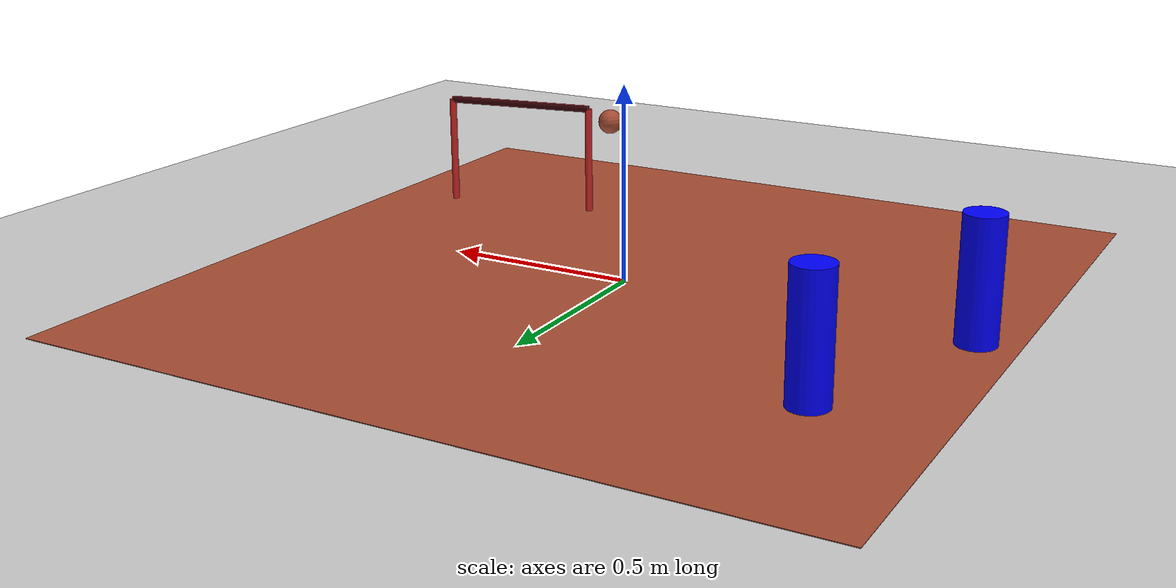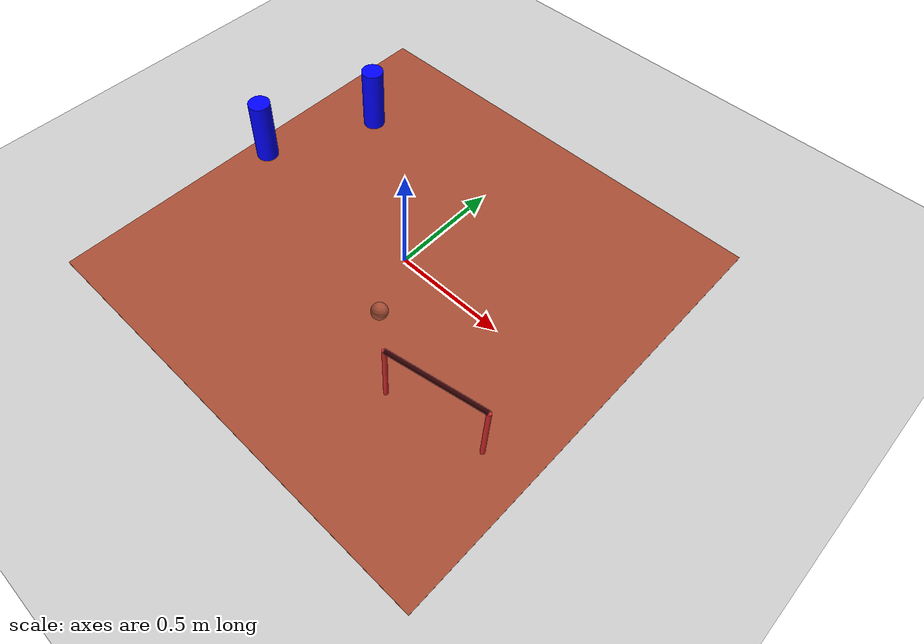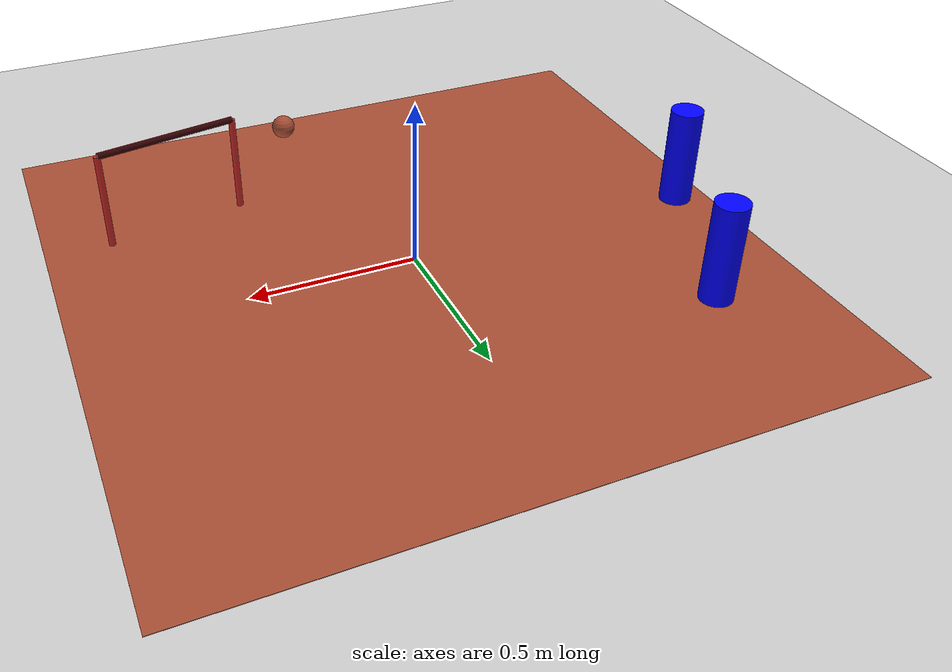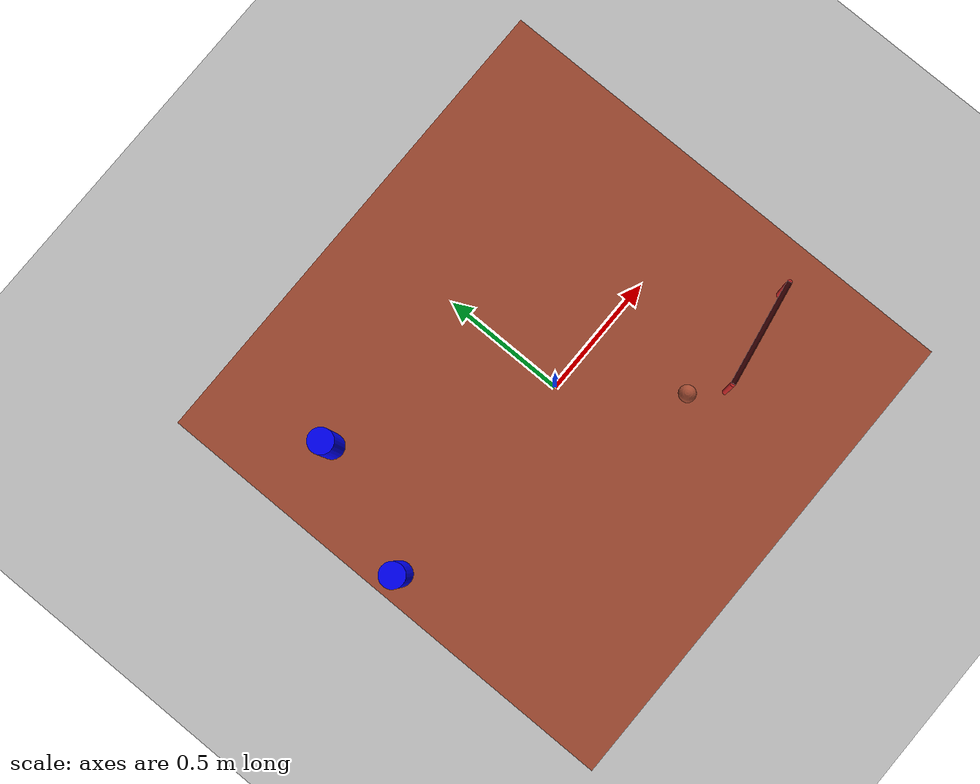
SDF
<sdf version="1.6">
 <world name="default">
  <plugin filename="gz-sim-physics-system" name="gz::sim::systems::Physics"/>
  <plugin filename="gz-sim-user-commands-system" name="gz::sim::systems::UserCommands"/>
  <plugin filename="gz-sim-scene-broadcaster-system" name="gz::sim::systems::SceneBroadcaster"/>
  <plugin filename="gz-sim-sensors-system" name="gz::sim::systems::Sensors">
   <render_engine>ogre2</render_engine>
  </plugin>
  <plugin filename="gz-sim-imu-system" name="gz::sim::systems::Imu"/>
  <include><uri>https://fuel.gazebosim.org/1.0/OpenRobotics/models/Ground Plane</uri></include>
  <include><uri>model://sun</uri></include>
  <physics type="ode">
   <real_time_update_rate>125.0</real_time_update_rate>
   <max_step_size>0.008</max_step_size>
   <real_time_factor>1</real_time_factor>
   <ode>
    <solver>
     <type>quick</type>
     <iters>150</iters>
     <precon_iters>0</precon_iters>
     <sor>1.400000</sor>
     <use_dynamic_moi_rescaling>1</use_dynamic_moi_rescaling>
    </solver>
    <constraints>
     <cfm>0.00001</cfm>
     <erp>0.2</erp>
     <contact_max_correcting_vel>2000.000000</contact_max_correcting_vel>
     <contact_surface_layer>0.01000</contact_surface_layer>
    </constraints>
   </ode>
  </physics>
  <model name="projet_model"><static>1</static><include><uri>model://projet_model</uri></include></model>
  <model name="robocup_3Dsim_goal">
   <static>1</static>
   <include><uri>model://robocup_3Dsim_goal</uri></include>
  </model>
  <model name="Ball"><include><uri>model://Ball</uri></include></model>
  <model name="Obstacles"><include><uri>model://bouteille</uri></include></model>
 </world>
</sdf>

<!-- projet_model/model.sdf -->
<sdf version='1.6'>
  <model name='projet_model'>

  <link name='Floor'>
      <pose frame=''>0 0 0 0 -0 0</pose>
      <self_collide>0</self_collide>
      <kinematic>0</kinematic>

      <visual name='Floor_Visual'>

        <pose frame=''>0 0 0 0 -0 0</pose>
        <geometry>
          <box>
            <size>2.0 2 0.002</size>
          </box>
        </geometry>

        <material>
          <script>
            <uri>file://media/materials/scripts/gazebo.material</uri>
            <name>Gazebo/Bricks</name>
          </script>
          <pbr>
            <metal>
              <albedo_map>materials/textures/ground_texture2.png</albedo_map>
            </metal>
          </pbr>
          <ambient>1 1 1 1</ambient>
          <diffuse>1 1 1 1</diffuse>
          <specular>0.9 0.9 0.9 1</specular>
          <emissive>0 0 0 1</emissive>
        </material>
        <cast_shadows>1</cast_shadows>
        <transparency>0</transparency>
      </visual>
      <collision name='Floor_Collision'>
        <laser_retro>0</laser_retro>
        <max_contacts>10</max_contacts>

        <pose frame=''>0 0 0 0 -0 0</pose>
        <geometry>
          <box>
            <size>2.0 2 0.002</size>
          </box>
        </geometry>

        <surface>
          <friction>
            <ode>
              <mu>100</mu>
              <mu2>50</mu2>
              <fdir1>0 0 0</fdir1>
              <slip1>0</slip1>
              <slip2>0</slip2>
            </ode>
            <torsional>
              <coefficient>1</coefficient>
              <patch_radius>0</patch_radius>
              <surface_radius>0</surface_radius>
              <use_patch_radius>1</use_patch_radius>
              <ode>
                <slip>0</slip>
              </ode>
            </torsional>
          </friction>
          <bounce>
            <restitution_coefficient>0</restitution_coefficient>
            <threshold>1e+06</threshold>
          </bounce>
          <contact>
            <collide_without_contact>0</collide_without_contact>
            <collide_without_contact_bitmask>1</collide_without_contact_bitmask>
            <collide_bitmask>1</collide_bitmask>
            <ode>
              <soft_cfm>0</soft_cfm>
              <soft_erp>0.2</soft_erp>
              <kp>1e+13</kp>
              <kd>1</kd>
              <max_vel>0.01</max_vel>
              <min_depth>0</min_depth>
            </ode>
            <bullet>
              <split_impulse>1</split_impulse>
              <split_impulse_penetration_threshold>-0.01</split_impulse_penetration_threshold>
              <soft_cfm>0</soft_cfm>
              <soft_erp>0.2</soft_erp>
              <kp>1e+13</kp>
              <kd>1</kd>
            </bullet>
          </contact>
        </surface>
      </collision>
    </link>
 </model>
</sdf>

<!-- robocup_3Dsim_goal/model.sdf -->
<sdf version="1.5">
  <model name="robocup_3d_goal">
   <pose>0.596 -0.46 0 0 0 1.75</pose>
    <static>true</static>
    <link name="left_post">
      <pose>0 -0.21 0.15 0 0 0</pose>
      <collision name="collision">
        <geometry>
          <cylinder>
            <radius>0.01</radius>
            <length>0.3</length>
          </cylinder>
        </geometry>
      </collision>
      <visual name="visual">
        <geometry>
          <cylinder>
             <radius>0.01</radius>
            <length>0.3</length>
          </cylinder>
        </geometry>
          <material>
          <lighting>1</lighting>
          <script>
            <uri>file://media/materials/scripts/gazebo.material</uri>
            <name>Gazebo/Red</name>
          </script>
          <shader type="pixel">
            <normal_map>__default__</normal_map>
          </shader>
          <ambient>0.2 0. 0.01 1</ambient>
          <diffuse>0.2 0. 0.01 1</diffuse>
          <specular>0.2 0. 0.01 1</specular>
          <emissive>0.2 0. 0.01 1</emissive>
        </material>
      </visual>
    </link>

    <link name="right_post">
      <pose>0 0.21 0.15 0 0 0</pose>
      <collision name="collision">
        <geometry>
          <cylinder>
            <radius>0.01</radius>
            <length>0.3</length>
          </cylinder>
        </geometry>
      </collision>
      <visual name="visual">
        <geometry>
          <cylinder>
            <radius>0.01</radius>
            <length>0.3</length>
          </cylinder>
        </geometry>
          <material>
          <lighting>1</lighting>
          <script>
            <uri>file://media/materials/scripts/gazebo.material</uri>
            <name>Gazebo/Red</name>
          </script>
          <shader type="pixel">
            <normal_map>__default__</normal_map>
          </shader>
          <ambient>0.2 0. 0.01 1</ambient>
          <diffuse>0.2 0. 0.01 1</diffuse>
          <specular>0.2 0. 0.01 1</specular>
          <emissive>0.2 0. 0.01 1</emissive>
        </material>
      </visual>
    </link>

    <link name="crossbar">
    <pose>0 0 0.3 1.5708 0 0</pose>
      <collision name="collision">
        <geometry>
          <cylinder>
            <radius>0.01</radius>
            <length>0.42</length>
          </cylinder>
        </geometry>
      </collision>
      <visual name="visual">
        <geometry>
          <cylinder>
            <radius>0.01</radius>
            <length>0.42</length>
          </cylinder>
        </geometry>
            <material>
          <lighting>1</lighting>
          <script>
            <uri>file://media/materials/scripts/gazebo.material</uri>
            <name>Gazebo/Grey</name>
          </script>
          <shader type="pixel">
            <normal_map>__default__</normal_map>
          </shader>
          <ambient>0.2 0. 0.01 1</ambient>
          <diffuse>0.2 0. 0.01 1</diffuse>
          <specular>0.2 0. 0.01 1</specular>
          <emissive>0.2 0. 0.01 1</emissive>
        </material>
      </visual>
    </link>
  </model>
</sdf>

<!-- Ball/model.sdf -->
<sdf version="1.7">

    <model name="Ball">
      <link name="Ball">
            <pose>0.259 -0.393 0.3 0 -0 0</pose>
            <self_collide>0</self_collide>
            <kinematic>1</kinematic>
            <inertial>
                <mass>0.005</mass>
                <inertia>
                  <ixx>0.001</ixx>
                  <ixy>0.000</ixy>
                  <ixz>0.000</ixz>
                  <iyy>0.001</iyy>
                  <iyz>0.000</iyz>
                  <izz>0.001</izz>
                </inertia>
            </inertial>

            <visual name="Ball_visual">
              <geometry>
                <sphere>
                  <radius>0.033 </radius>
                </sphere>
              </geometry>
              <material>
                <script>
                  <uri>file://media/materials/scripts/gazebo.material</uri>
                  <name>Gazebo/Bricks</name>
                </script>
                <pbr>
                  <metal>
                    <albedo_map>materials/textures/ballon.jpg</albedo_map>
                  </metal>
                </pbr>
                <ambient>1 1 1 1</ambient>
                <diffuse>1 1 1 1</diffuse>
                <specular>0.1 0.1 0.1 1</specular>
                <emissive>0 0 0 1</emissive>
              </material>
              <cast_shadows>1</cast_shadows>
              <transparency>0</transparency>
            </visual>

            <collision name="ball_collision">
              <laser_retro>0</laser_retro>
              <max_contacts>10</max_contacts>
              <geometry>
                <sphere>
                  <radius>0.033 </radius>
                </sphere>
              </geometry>
              <surface>
                <friction>
                  <ode>
                    <mu>100</mu>
                    <mu2>50</mu2>
                    <fdir1>0 0 0</fdir1>
                    <slip1>0</slip1>
                    <slip2>0</slip2>
                  </ode>
                  <torsional>
                    <coefficient>1</coefficient>
                    <patch_radius>0</patch_radius>
                    <surface_radius>0</surface_radius>
                    <use_patch_radius>1</use_patch_radius>
                    <ode>
                      <slip>0</slip>
                    </ode>
                  </torsional>
                </friction>
                <bounce>
                  <restitution_coefficient>0</restitution_coefficient>
                  <threshold>1e+06</threshold>
                </bounce>
                <contact>
                  <collide_without_contact>0</collide_without_contact>
                  <collide_without_contact_bitmask>1</collide_without_contact_bitmask>
                  <collide_bitmask>1</collide_bitmask>
                  <ode>
                    <soft_cfm>0</soft_cfm>
                    <soft_erp>0.2</soft_erp>
                    <kp>1e+13</kp>
                    <kd>1</kd>
                    <max_vel>0.01</max_vel>
                    <min_depth>0</min_depth>
                  </ode>
                  <bullet>
                    <split_impulse>1</split_impulse>
                    <split_impulse_penetration_threshold>-0.01</split_impulse_penetration_threshold>
                    <soft_cfm>0</soft_cfm>
                    <soft_erp>0.2</soft_erp>
                    <kp>1e+13</kp>
                    <kd>1</kd>
                  </bullet>
                </contact>
              </surface>
            </collision>
          </link>
      </model>
</sdf>

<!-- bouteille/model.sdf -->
<sdf version='1.7'>
  <model name='bouteille'>

    <link name='bouteille2'>
      <pose>-0.9 0 0.155 0 -0 0</pose>
      <self_collide>0</self_collide>
      <inertial>
        <mass>1</mass>
        <inertia>
          <ixx>0.145833</ixx>
          <ixy>0</ixy>
          <ixz>0</ixz>
          <iyy>0.145833</iyy>
          <iyz>0</iyz>
          <izz>0.125</izz>
        </inertia>
        <pose>0 0 0 0 -0 0</pose>
      </inertial>
      <self_collide>0</self_collide>
      <enable_wind>0</enable_wind>
      <kinematic>0</kinematic>
      <pose>0 0 0 0 -0 0</pose>
      <gravity>1</gravity>
      <visual name='visual'>
        <geometry>
          <cylinder>
            <radius>0.05</radius>
            <length>0.31</length>
          </cylinder>
        </geometry>
        <material>
          <script>
            <name>Gazebo/Grey</name>
            <uri>file://media/materials/scripts/gazebo.material</uri>
          </script>
          <shader type='pixel'>
            <normal_map>__default__</normal_map>
          </shader>
          <ambient>0 0 1 1</ambient>
          <diffuse>0 0 1 1</diffuse>
          <specular>0 0 0.9 1</specular>
          <emissive>0 0 0 1</emissive>
        </material>
        <pose>0 0 0 0 -0 0</pose>
        <transparency>0</transparency>
        <cast_shadows>1</cast_shadows>
      </visual>
      <collision name='collision'>
        <laser_retro>0</laser_retro>
        <max_contacts>10</max_contacts>
        <pose>0 0 0 0 -0 0</pose>
        <geometry>
          <cylinder>
            <radius>0.05</radius>
            <length>0.31</length>
          </cylinder>
        </geometry>
        <surface>
          <friction>
            <ode>
              <mu>1</mu>
              <mu2>1</mu2>
              <fdir1>0 0 0</fdir1>
              <slip1>0</slip1>
              <slip2>0</slip2>
            </ode>
            <torsional>
              <coefficient>1</coefficient>
              <patch_radius>0</patch_radius>
              <surface_radius>0</surface_radius>
              <use_patch_radius>1</use_patch_radius>
              <ode>
                <slip>0</slip>
              </ode>
            </torsional>
          </friction>
          <bounce>
            <restitution_coefficient>0</restitution_coefficient>
            <threshold>1e+06</threshold>
          </bounce>
          <contact>
            <collide_without_contact>0</collide_without_contact>
            <collide_without_contact_bitmask>1</collide_without_contact_bitmask>
            <collide_bitmask>1</collide_bitmask>
            <ode>
              <soft_cfm>0</soft_cfm>
              <soft_erp>0.2</soft_erp>
              <kp>1e+13</kp>
              <kd>1</kd>
              <max_vel>0.01</max_vel>
              <min_depth>0</min_depth>
            </ode>
            <bullet>
              <split_impulse>1</split_impulse>
              <split_impulse_penetration_threshold>-0.01</split_impulse_penetration_threshold>
              <soft_cfm>0</soft_cfm>
              <soft_erp>0.2</soft_erp>
              <kp>1e+13</kp>
              <kd>1</kd>
            </bullet>
          </contact>
        </surface>
      </collision>
    </link>

        <link name='bouteille3'>
      <pose>-0.7 0.5 0.155 0 -0 0</pose>
      <self_collide>0</self_collide>
      <inertial>
        <mass>1</mass>
        <inertia>
          <ixx>0.145833</ixx>
          <ixy>0</ixy>
          <ixz>0</ixz>
          <iyy>0.145833</iyy>
          <iyz>0</iyz>
          <izz>0.125</izz>
        </inertia>
        <pose>0 0 0 0 -0 0</pose>
      </inertial>
      <self_collide>0</self_collide>
      <enable_wind>0</enable_wind>
      <kinematic>0</kinematic>
      <pose>0 0 0 0 -0 0</pose>
      <gravity>1</gravity>
      <visual name='visual'>
        <geometry>
          <cylinder>
            <radius>0.05</radius>
            <length>0.31</length>
          </cylinder>
        </geometry>
        <material>
          <script>
            <name>Gazebo/Grey</name>
            <uri>file://media/materials/scripts/gazebo.material</uri>
          </script>
          <shader type='pixel'>
            <normal_map>__default__</normal_map>
          </shader>
          <ambient>0 0 1 1</ambient>
          <diffuse>0 0 1 1</diffuse>
          <specular>0 0 0.9 1</specular>
          <emissive>0 0 0 1</emissive>
        </material>
        <pose>0 0 0 0 -0 0</pose>
        <transparency>0</transparency>
        <cast_shadows>1</cast_shadows>
      </visual>
      <collision name='collision'>
        <laser_retro>0</laser_retro>
        <max_contacts>10</max_contacts>
        <pose>0 0 0 0 -0 0</pose>
        <geometry>
          <cylinder>
            <radius>0.05</radius>
            <length>0.31</length>
          </cylinder>
        </geometry>
        <surface>
          <friction>
            <ode>
              <mu>1</mu>
              <mu2>1</mu2>
              <fdir1>0 0 0</fdir1>
              <slip1>0</slip1>
              <slip2>0</slip2>
            </ode>
            <torsional>
              <coefficient>1</coefficient>
              <patch_radius>0</patch_radius>
              <surface_radius>0</surface_radius>
              <use_patch_radius>1</use_patch_radius>
              <ode>
                <slip>0</slip>
              </ode>
            </torsional>
          </friction>
          <bounce>
            <restitution_coefficient>0</restitution_coefficient>
            <threshold>1e+06</threshold>
          </bounce>
          <contact>
            <collide_without_contact>0</collide_without_contact>
            <collide_without_contact_bitmask>1</collide_without_contact_bitmask>
            <collide_bitmask>1</collide_bitmask>
            <ode>
              <soft_cfm>0</soft_cfm>
              <soft_erp>0.2</soft_erp>
              <kp>1e+13</kp>
              <kd>1</kd>
              <max_vel>0.01</max_vel>
              <min_depth>0</min_depth>
            </ode>
            <bullet>
              <split_impulse>1</split_impulse>
              <split_impulse_penetration_threshold>-0.01</split_impulse_penetration_threshold>
              <soft_cfm>0</soft_cfm>
              <soft_erp>0.2</soft_erp>
              <kp>1e+13</kp>
              <kd>1</kd>
            </bullet>
          </contact>
        </surface>
      </collision>
    </link>

    <static>1</static>
    <allow_auto_disable>1</allow_auto_disable>
  </model>
</sdf>
